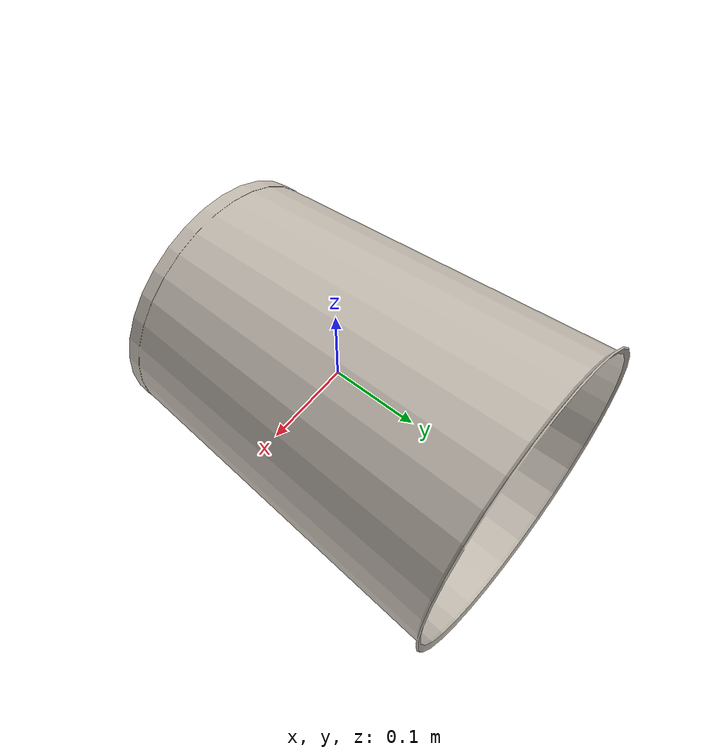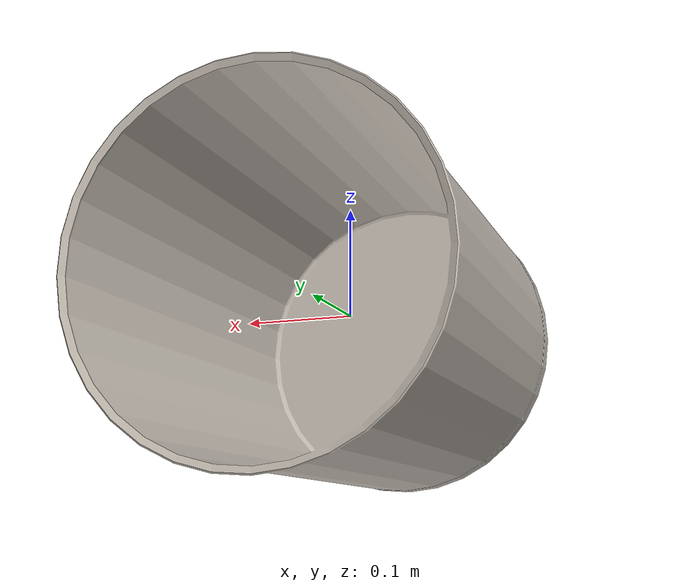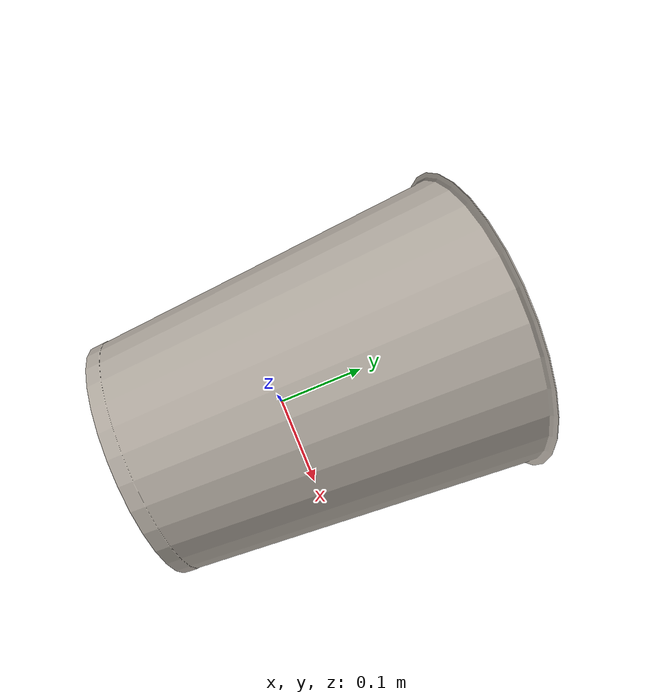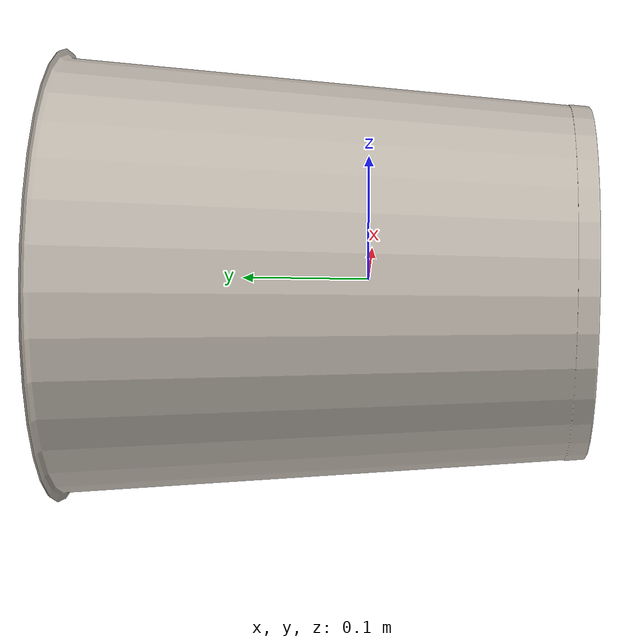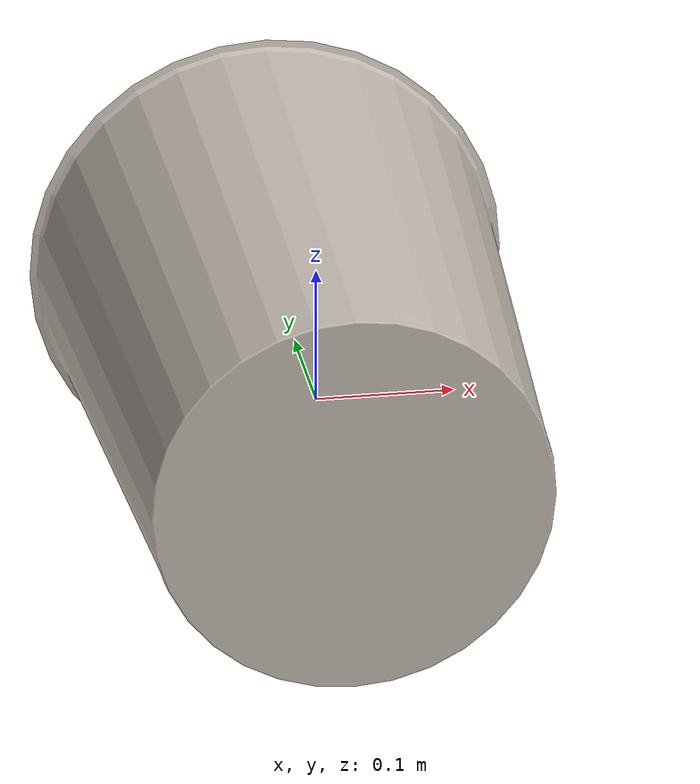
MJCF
<mujoco model="garbage_can">
  <default>
    <default class="visual">
      <geom group="2" type="mesh" contype="0" conaffinity="0"/>
    </default>
    <default class="collision">
      <geom group="3" type="mesh"/>
    </default>
  </default>
  <asset>
    <texture type="2d" name="material_0" file="material_0.png"/>
    <material name="material_0" texture="material_0" specular="0.4000000000000001" shininess="0.001"/>
    <mesh file="garbage_can.obj"/>
    <mesh file="garbage_can_collision_0.obj"/>
    <mesh file="garbage_can_collision_1.obj"/>
    <mesh file="garbage_can_collision_2.obj"/>
    <mesh file="garbage_can_collision_3.obj"/>
    <mesh file="garbage_can_collision_4.obj"/>
    <mesh file="garbage_can_collision_5.obj"/>
    <mesh file="garbage_can_collision_6.obj"/>
    <mesh file="garbage_can_collision_7.obj"/>
    <mesh file="garbage_can_collision_8.obj"/>
    <mesh file="garbage_can_collision_9.obj"/>
    <mesh file="garbage_can_collision_10.obj"/>
    <mesh file="garbage_can_collision_11.obj"/>
  </asset>
  <worldbody>
    <body name="garbage_can">
      <geom material="material_0" mesh="garbage_can" class="visual"/>
      <geom mesh="garbage_can_collision_0" rgba="0.8012812558474044 0.8317909347896483 0.04710008714146674 1" class="collision"/>
      <geom mesh="garbage_can_collision_1" rgba="0.1828031397708193 0.6407750575042529 0.7965693809235351 1" class="collision"/>
      <geom mesh="garbage_can_collision_2" rgba="0.9697562036453425 0.3337804008950209 0.6756098339631399 1" class="collision"/>
      <geom mesh="garbage_can_collision_3" rgba="0.6396363326592246 0.1606672809908436 0.10302905274356955 1" class="collision"/>
      <geom mesh="garbage_can_collision_4" rgba="0.44956743618846706 0.7135838754366021 0.12993355714482213 1" class="collision"/>
      <geom mesh="garbage_can_collision_5" rgba="0.03494497304428712 0.3545163027863997 0.8997587864846672 1" class="collision"/>
      <geom mesh="garbage_can_collision_6" rgba="0.466992923680539 0.3035685724327374 0.649594805131397 1" class="collision"/>
      <geom mesh="garbage_can_collision_7" rgba="0.743136814709524 0.4401846231278096 0.36702064445517846 1" class="collision"/>
      <geom mesh="garbage_can_collision_8" rgba="0.8101670233401099 0.034767754655187666 0.20724929550582583 1" class="collision"/>
      <geom mesh="garbage_can_collision_9" rgba="0.04897013879621326 0.43711463156744634 0.8956359455087584 1" class="collision"/>
      <geom mesh="garbage_can_collision_10" rgba="0.6829431339905241 0.19286376410434536 0.16301238957859965 1" class="collision"/>
      <geom mesh="garbage_can_collision_11" rgba="0.6159697755033829 0.8383463309768786 0.20950910532792744 1" class="collision"/>
    </body>
  </worldbody>
</mujoco>
